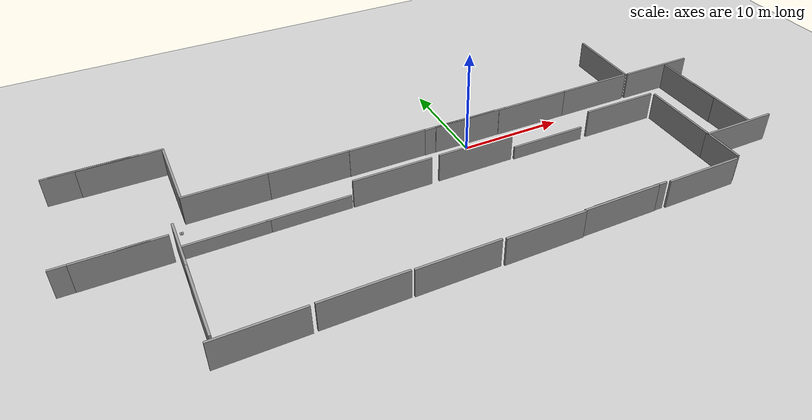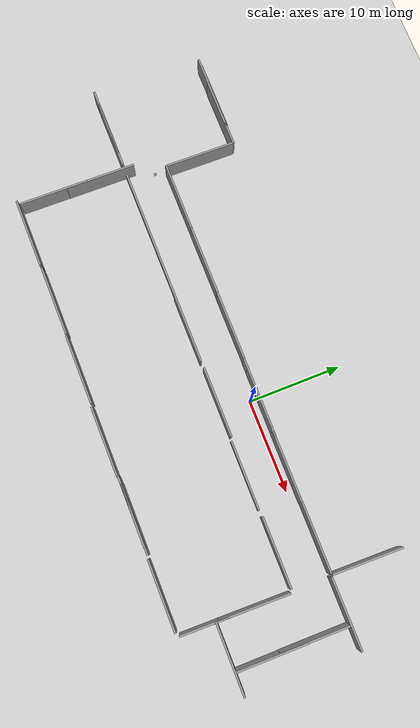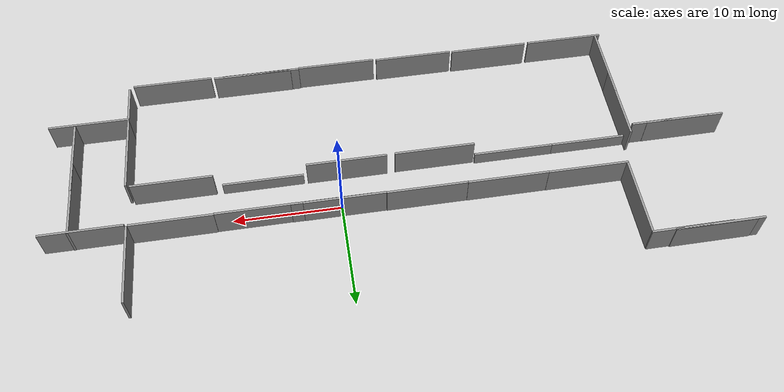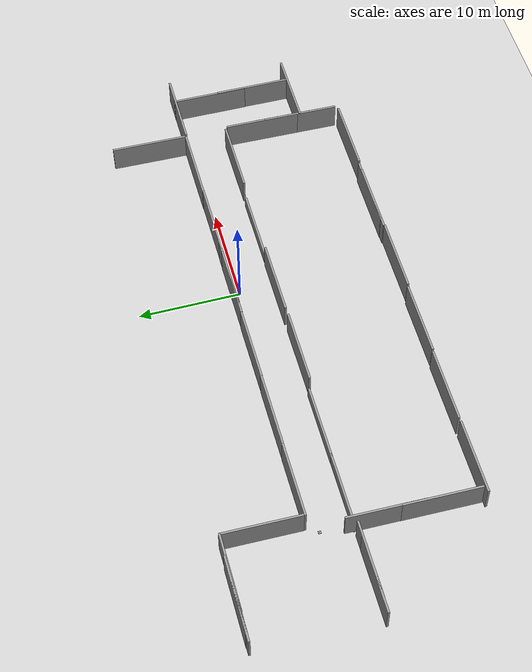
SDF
<sdf version="1.7">
 <world name="mart_world">
  <plugin name="gazebo_ros_state" filename="libgazebo_ros_state.so">
   <ros><namespace>/gazebo</namespace></ros>
   <update_rate>5.0</update_rate>
  </plugin>
  <physics type="ode">
   <max_step_size>0.001</max_step_size>
   <real_time_factor>1</real_time_factor>
   <real_time_update_rate>1000</real_time_update_rate>
  </physics>
  <light name="sun" type="directional">
   <pose>0 0 10 0 -0 0</pose>
   <diffuse>0.8 0.8 0.8 1</diffuse>
   <specular>0.2 0.2 0.2 1</specular>
   <attenuation>
    <range>1000</range>
    <constant>0.9</constant>
    <linear>0.01</linear>
    <quadratic>0.001</quadratic>
   </attenuation>
   <direction>-0.5 0.1 -0.9</direction>
   <spot><inner_angle>0</inner_angle><outer_angle>0</outer_angle><falloff>0</falloff></spot>
  </light>
  <model name="ground_plane">
   <static>1</static>
   <link name="link">
    <collision name="collision">
     <geometry><plane><normal>0 0 1</normal><size>100 100</size></plane></geometry>
     <surface><friction><ode><mu>100</mu><mu2>50</mu2></ode></friction></surface>
    </collision>
    <visual name="visual">
     <cast_shadows>0</cast_shadows>
     <geometry><plane><normal>0 0 1</normal><size>100 100</size></plane></geometry>
     <material>
      <script><uri>file://media/materials/scripts/gazebo.material</uri><name>Gazebo/Grey</name></script>
     </material>
    </visual>
   </link>
  </model>
  <gravity>0 0 -9.8</gravity>
  <magnetic_field>6e-06 2.3e-05 -4.2e-05</magnetic_field>
  <atmosphere type="adiabatic"/>
  <scene><ambient>0.4 0.4 0.4 1</ambient><background>0.7 0.7 0.7 1</background><shadows>1</shadows></scene>
  <audio><device>default</device></audio>
  <spherical_coordinates>
   <surface_model>EARTH_WGS84</surface_model>
   <latitude_deg>0</latitude_deg>
   <longitude_deg>0</longitude_deg>
   <elevation>0</elevation>
   <heading_deg>0</heading_deg>
  </spherical_coordinates>
  <gravity>0 0 -9.8</gravity>
  <magnetic_field>6e-06 2.3e-05 -4.2e-05</magnetic_field>
  <atmosphere type="adiabatic"/>
  <physics type="ode">
   <max_step_size>0.001</max_step_size>
   <real_time_factor>1</real_time_factor>
   <real_time_update_rate>1000</real_time_update_rate>
  </physics>
  <scene><ambient>0.4 0.4 0.4 1</ambient><background>0.7 0.7 0.7 1</background><shadows>1</shadows></scene>
  <audio><device>default</device></audio>
  <spherical_coordinates>
   <surface_model>EARTH_WGS84</surface_model>
   <latitude_deg>0</latitude_deg>
   <longitude_deg>0</longitude_deg>
   <elevation>0</elevation>
   <heading_deg>0</heading_deg>
  </spherical_coordinates>
  <model name="ground_plane">
   <static>1</static>
   <link name="link">
    <collision name="collision">
     <geometry><plane><normal>0 0 1</normal><size>100 100</size></plane></geometry>
     <surface><friction><ode><mu>100</mu><mu2>50</mu2></ode></friction></surface>
    </collision>
    <visual name="visual">
     <cast_shadows>0</cast_shadows>
     <geometry><plane><normal>0 0 1</normal><size>100 100</size></plane></geometry>
     <material>
      <script><uri>file://media/materials/scripts/gazebo.material</uri><name>Gazebo/Grey</name></script>
     </material>
    </visual>
   </link>
  </model>
  <model name="grey_wall_clone_clone">
   <static>1</static>
   <link name="link">
    <pose>0 0 1.4 0 -0 0</pose>
    <collision name="collision"><geometry><box><size>7.5 0.2 2.8</size></box></geometry></collision>
    <visual name="visual">
     <cast_shadows>0</cast_shadows>
     <geometry><box><size>7.5 0.2 2.8</size></box></geometry>
     <material>
      <script>
       <uri>model://grey_wall/materials/scripts</uri>
       <uri>model://grey_wall/materials/textures</uri>
       <name>vrc/grey_wall</name>
      </script>
     </material>
    </visual>
   </link>
   <pose>-15.201 0.87034 0 0 -0 0</pose>
  </model>
  <model name="grey_wall_clone_clone_0">
   <static>1</static>
   <link name="link">
    <pose>0 0 1.4 0 -0 0</pose>
    <collision name="collision"><geometry><box><size>7.5 0.2 2.8</size></box></geometry></collision>
    <visual name="visual">
     <cast_shadows>0</cast_shadows>
     <geometry><box><size>7.5 0.2 2.8</size></box></geometry>
     <material>
      <script>
       <uri>model://grey_wall/materials/scripts</uri>
       <uri>model://grey_wall/materials/textures</uri>
       <name>vrc/grey_wall</name>
      </script>
     </material>
    </visual>
   </link>
   <pose>-0.904995 -3.31283 0 0 -0 0</pose>
  </model>
  <model name="grey_wall_clone_clone_0_clone_0">
   <static>1</static>
   <link name="link">
    <pose>0 0 1.4 0 -0 0</pose>
    <collision name="collision"><geometry><box><size>7.5 0.2 2.8</size></box></geometry></collision>
    <visual name="visual">
     <cast_shadows>0</cast_shadows>
     <geometry><box><size>7.5 0.2 2.8</size></box></geometry>
     <material>
      <script>
       <uri>model://grey_wall/materials/scripts</uri>
       <uri>model://grey_wall/materials/textures</uri>
       <name>vrc/grey_wall</name>
      </script>
     </material>
    </visual>
   </link>
   <pose>6.15501 -15.2589 0 0 -0 0</pose>
  </model>
  <model name="grey_wall_clone_clone_0_clone_0_clone">
   <static>1</static>
   <link name="link">
    <pose>0 0 1.4 0 -0 0</pose>
    <collision name="collision"><geometry><box><size>7.5 0.2 2.8</size></box></geometry></collision>
    <visual name="visual">
     <cast_shadows>0</cast_shadows>
     <geometry><box><size>7.5 0.2 2.8</size></box></geometry>
     <material>
      <script>
       <uri>model://grey_wall/materials/scripts</uri>
       <uri>model://grey_wall/materials/textures</uri>
       <name>vrc/grey_wall</name>
      </script>
     </material>
    </visual>
   </link>
   <pose>14.7793 -15.3421 0 0 -0 0</pose>
  </model>
  <model name="grey_wall_clone_clone_0_clone_1">
   <static>1</static>
   <link name="link">
    <pose>0 0 1.4 0 -0 0</pose>
    <collision name="collision"><geometry><box><size>7.5 0.2 2.8</size></box></geometry></collision>
    <visual name="visual">
     <cast_shadows>0</cast_shadows>
     <geometry><box><size>7.5 0.2 2.8</size></box></geometry>
     <material>
      <script>
       <uri>model://grey_wall/materials/scripts</uri>
       <uri>model://grey_wall/materials/textures</uri>
       <name>vrc/grey_wall</name>
      </script>
     </material>
    </visual>
   </link>
   <pose>-9.10397 -15.2317 0 0 -0 0</pose>
  </model>
  <model name="grey_wall_clone_clone_0_clone_2">
   <static>1</static>
   <link name="link">
    <pose>0 0 1.4 0 -0 0</pose>
    <collision name="collision"><geometry><box><size>7.5 0.2 2.8</size></box></geometry></collision>
    <visual name="visual">
     <cast_shadows>0</cast_shadows>
     <geometry><box><size>7.5 0.2 2.8</size></box></geometry>
     <material>
      <script>
       <uri>model://grey_wall/materials/scripts</uri>
       <uri>model://grey_wall/materials/textures</uri>
       <name>vrc/grey_wall</name>
      </script>
     </material>
    </visual>
   </link>
   <pose>-16.823 -15.1589 0 0 -0 0</pose>
  </model>
  <model name="grey_wall_clone_clone_0_clone_3">
   <static>1</static>
   <link name="link">
    <pose>0 0 1.4 0 -0 0</pose>
    <collision name="collision"><geometry><box><size>7.5 0.2 2.8</size></box></geometry></collision>
    <visual name="visual">
     <cast_shadows>0</cast_shadows>
     <geometry><box><size>7.5 0.2 2.8</size></box></geometry>
     <material>
      <script>
       <uri>model://grey_wall/materials/scripts</uri>
       <uri>model://grey_wall/materials/textures</uri>
       <name>vrc/grey_wall</name>
      </script>
     </material>
    </visual>
   </link>
   <pose>-24.6787 -15.1926 0 0 -0 0</pose>
  </model>
  <model name="grey_wall_clone_clone_clone_clone_clone">
   <static>1</static>
   <link name="link">
    <pose>0 0 1.4 0 -0 0</pose>
    <collision name="collision"><geometry><box><size>7.5 0.2 2.8</size></box></geometry></collision>
    <visual name="visual">
     <cast_shadows>0</cast_shadows>
     <geometry><box><size>7.5 0.2 2.8</size></box></geometry>
     <material>
      <script>
       <uri>model://grey_wall/materials/scripts</uri>
       <uri>model://grey_wall/materials/textures</uri>
       <name>vrc/grey_wall</name>
      </script>
     </material>
    </visual>
   </link>
   <pose>-27.8328 -11.2094 0.184381 -0.000989 -0 1.55353</pose>
  </model>
  <model name="grey_wall_clone_clone_clone_clone_clone_clone">
   <static>1</static>
   <link name="link">
    <pose>0 0 1.4 0 -0 0</pose>
    <collision name="collision"><geometry><box><size>7.5 0.2 2.8</size></box></geometry></collision>
    <visual name="visual">
     <cast_shadows>0</cast_shadows>
     <geometry><box><size>7.5 0.2 2.8</size></box></geometry>
     <material>
      <script>
       <uri>model://grey_wall/materials/scripts</uri>
       <uri>model://grey_wall/materials/textures</uri>
       <name>vrc/grey_wall</name>
      </script>
     </material>
    </visual>
   </link>
   <pose>-27.7266 -6.05167 0.184331 -0.000989 -0 1.55353</pose>
  </model>
  <model name="grey_wall_clone_clone_0_clone_3_clone">
   <static>1</static>
   <link name="link">
    <pose>0 0 1.4 0 -0 0</pose>
    <collision name="collision"><geometry><box><size>7.5 0.2 2.8</size></box></geometry></collision>
    <visual name="visual">
     <cast_shadows>0</cast_shadows>
     <geometry><box><size>7.5 0.2 2.8</size></box></geometry>
     <material>
      <script>
       <uri>model://grey_wall/materials/scripts</uri>
       <uri>model://grey_wall/materials/textures</uri>
       <name>vrc/grey_wall</name>
      </script>
     </material>
    </visual>
   </link>
   <pose>-31.9086 -3.33357 0 0 -0 0</pose>
  </model>
  <model name="grey_wall_clone_clone_0_clone_3_clone_clone">
   <static>1</static>
   <link name="link">
    <pose>0 0 1.4 0 -0 0</pose>
    <collision name="collision"><geometry><box><size>7.5 0.2 2.8</size></box></geometry></collision>
    <visual name="visual">
     <cast_shadows>0</cast_shadows>
     <geometry><box><size>7.5 0.2 2.8</size></box></geometry>
     <material>
      <script>
       <uri>model://grey_wall/materials/scripts</uri>
       <uri>model://grey_wall/materials/textures</uri>
       <name>vrc/grey_wall</name>
      </script>
     </material>
    </visual>
   </link>
   <pose>-33.3262 -3.31729 0 0 -0 0</pose>
  </model>
  <model name="grey_wall_clone_clone_0_clone_3_clone_clone_clone">
   <static>1</static>
   <link name="link">
    <pose>0 0 1.4 0 -0 0</pose>
    <collision name="collision"><geometry><box><size>7.5 0.2 2.8</size></box></geometry></collision>
    <visual name="visual">
     <cast_shadows>0</cast_shadows>
     <geometry><box><size>7.5 0.2 2.8</size></box></geometry>
     <material>
      <script>
       <uri>model://grey_wall/materials/scripts</uri>
       <uri>model://grey_wall/materials/textures</uri>
       <name>vrc/grey_wall</name>
      </script>
     </material>
    </visual>
   </link>
   <pose>-32.7585 8.54767 0 0 -0 0</pose>
  </model>
  <model name="grey_wall_clone_clone_0_clone_3_clone_clone_clone_clone">
   <static>1</static>
   <link name="link">
    <pose>0 0 1.4 0 -0 0</pose>
    <collision name="collision"><geometry><box><size>7.5 0.2 2.8</size></box></geometry></collision>
    <visual name="visual">
     <cast_shadows>0</cast_shadows>
     <geometry><box><size>7.5 0.2 2.8</size></box></geometry>
     <material>
      <script>
       <uri>model://grey_wall/materials/scripts</uri>
       <uri>model://grey_wall/materials/textures</uri>
       <name>vrc/grey_wall</name>
      </script>
     </material>
    </visual>
   </link>
   <pose>-32.045 8.57947 0 0 -0 0</pose>
  </model>
  <model name="grey_wall_clone_clone_0_clone_3_clone_0">
   <static>1</static>
   <link name="link">
    <pose>0 0 1.4 0 -0 0</pose>
    <collision name="collision"><geometry><box><size>7.5 0.2 2.8</size></box></geometry></collision>
    <visual name="visual">
     <cast_shadows>0</cast_shadows>
     <geometry><box><size>7.5 0.2 2.8</size></box></geometry>
     <material>
      <script>
       <uri>model://grey_wall/materials/scripts</uri>
       <uri>model://grey_wall/materials/textures</uri>
       <name>vrc/grey_wall</name>
      </script>
     </material>
    </visual>
   </link>
   <pose>-29.8918 8.50153 0 0 -0 0</pose>
  </model>
  <model name="grey_wall_clone_clone_0_clone_3_clone_2">
   <static>1</static>
   <link name="link">
    <pose>0 0 1.4 0 -0 0</pose>
    <collision name="collision"><geometry><box><size>7.5 0.2 2.8</size></box></geometry></collision>
    <visual name="visual">
     <cast_shadows>0</cast_shadows>
     <geometry><box><size>7.5 0.2 2.8</size></box></geometry>
     <material>
      <script>
       <uri>model://grey_wall/materials/scripts</uri>
       <uri>model://grey_wall/materials/textures</uri>
       <name>vrc/grey_wall</name>
      </script>
     </material>
    </visual>
   </link>
   <pose>-7.76552 0.846313 0 0 -0 0</pose>
  </model>
  <model name="grey_wall_clone_clone_0_clone_3_clone_3">
   <static>1</static>
   <link name="link">
    <pose>0 0 1.4 0 -0 0</pose>
    <collision name="collision"><geometry><box><size>7.5 0.2 2.8</size></box></geometry></collision>
    <visual name="visual">
     <cast_shadows>0</cast_shadows>
     <geometry><box><size>7.5 0.2 2.8</size></box></geometry>
     <material>
      <script>
       <uri>model://grey_wall/materials/scripts</uri>
       <uri>model://grey_wall/materials/textures</uri>
       <name>vrc/grey_wall</name>
      </script>
     </material>
    </visual>
   </link>
   <pose>0.850383 0.795303 0 0 -0 0</pose>
  </model>
  <model name="grey_wall_clone_clone_0_clone_3_clone_4">
   <static>1</static>
   <link name="link">
    <pose>0 0 1.4 0 -0 0</pose>
    <collision name="collision"><geometry><box><size>7.5 0.2 2.8</size></box></geometry></collision>
    <visual name="visual">
     <cast_shadows>0</cast_shadows>
     <geometry><box><size>7.5 0.2 2.8</size></box></geometry>
     <material>
      <script>
       <uri>model://grey_wall/materials/scripts</uri>
       <uri>model://grey_wall/materials/textures</uri>
       <name>vrc/grey_wall</name>
      </script>
     </material>
    </visual>
   </link>
   <pose>7.62373 0.771758 0 0 -0 0</pose>
  </model>
  <model name="grey_wall_clone_clone_0_clone_3_clone_5">
   <static>1</static>
   <link name="link">
    <pose>0 0 1.4 0 -0 0</pose>
    <collision name="collision"><geometry><box><size>7.5 0.2 2.8</size></box></geometry></collision>
    <visual name="visual">
     <cast_shadows>0</cast_shadows>
     <geometry><box><size>7.5 0.2 2.8</size></box></geometry>
     <material>
      <script>
       <uri>model://grey_wall/materials/scripts</uri>
       <uri>model://grey_wall/materials/textures</uri>
       <name>vrc/grey_wall</name>
      </script>
     </material>
    </visual>
   </link>
   <pose>15.1161 0.798495 -0.02118 0 -0 0</pose>
  </model>
  <model name="grey_wall_clone_clone_clone_clone_clone_0">
   <static>1</static>
   <link name="link">
    <pose>0 0 1.4 0 -0 0</pose>
    <collision name="collision"><geometry><box><size>7.5 0.2 2.8</size></box></geometry></collision>
    <visual name="visual">
     <cast_shadows>0</cast_shadows>
     <geometry><box><size>7.5 0.2 2.8</size></box></geometry>
     <material>
      <script>
       <uri>model://grey_wall/materials/scripts</uri>
       <uri>model://grey_wall/materials/textures</uri>
       <name>vrc/grey_wall</name>
      </script>
     </material>
    </visual>
   </link>
   <pose>24.0078 -7.51837 -0.070959 -0.000989 1.2e-05 1.566</pose>
  </model>
  <model name="my_robot">
   <link name="base_footprint">
    <inertial>
     <pose>-0.064 0 0.062754 0 -0 0</pose>
     <mass>1.486</mass>
     <inertia>
      <ixx>0.0103221</ixx>
      <ixy>0</ixy>
      <ixz>-8.67362e-19</ixz>
      <iyy>0.0117821</iyy>
      <iyz>0</iyz>
      <izz>0.01245</izz>
     </inertia>
    </inertial>
    <collision name="base_footprint_fixed_joint_lump__base_link_collision">
     <pose>-0.064 0 0.057 0 -0 0</pose>
     <geometry><box><size>0.266 0.266 0.094</size></box></geometry>
    </collision>
    <collision name="base_footprint_fixed_joint_lump__base_scan_collision_1">
     <pose>-0.064 0 0.132 0 -0 0</pose>
     <geometry><cylinder><length>0.0315</length><radius>0.055</radius></cylinder></geometry>
    </collision>
    <visual name="base_footprint_fixed_joint_lump__base_link_visual">
     <pose>-0.064 0 0.057 0 -0 0</pose>
     <geometry><box><size>0.266 0.266 0.094</size></box></geometry>
    </visual>
    <visual name="base_footprint_fixed_joint_lump__base_scan_visual_1">
     <pose>-0.064 0 0.132 0 -0 0</pose>
     <geometry><cylinder><length>0.0315</length><radius>0.055</radius></cylinder></geometry>
    </visual>
    <sensor name="my_robot_lds" type="ray">
     <always_on>1</always_on>
     <visualize>1</visualize>
     <update_rate>5</update_rate>
     <ray>
      <scan>
       <horizontal>
        <samples>360</samples>
        <resolution>1</resolution>
        <min_angle>0</min_angle>
        <max_angle>6.28319</max_angle>
       </horizontal>
       <vertical><samples>1</samples><min_angle>0</min_angle><max_angle>0</max_angle></vertical>
      </scan>
      <range><min>0.12</min><max>3.5</max><resolution>0.015</resolution></range>
     </ray>
     <plugin name="my_robot_laserscan" filename="libgazebo_ros_ray_sensor.so">
      <ros><remapping>~/out:=scan</remapping></ros>
      <output_type>sensor_msgs/LaserScan</output_type>
      <frame_name>base_scan</frame_name>
     </plugin>
     <pose>-0.064 0 0.132 0 -0 0</pose>
    </sensor>
   </link>
   <joint name="wheel_left_joint" type="revolute">
    <pose relative_to="base_footprint">0 0.144 0.033 -1.5708 0 0</pose>
    <parent>base_footprint</parent>
    <child>wheel_left_link</child>
    <axis>
     <xyz>0 0 1</xyz>
     <limit><lower>-1e+16</lower><upper>1e+16</upper></limit>
     <dynamics><spring_reference>0</spring_reference><spring_stiffness>0</spring_stiffness></dynamics>
    </axis>
   </joint>
   <link name="wheel_left_link">
    <pose relative_to="wheel_left_joint">0 0 0 0 -0 0</pose>
    <inertial>
     <mass>0.028</mass>
     <inertia>
      <ixx>1.117e-05</ixx>
      <ixy>0</ixy>
      <ixz>0</ixz>
      <iyy>1.119e-05</iyy>
      <iyz>0</iyz>
      <izz>2.071e-05</izz>
     </inertia>
    </inertial>
    <collision name="wheel_left_link_collision">
     <geometry><cylinder><length>0.018</length><radius>0.033</radius></cylinder></geometry>
    </collision>
    <visual name="wheel_left_link_visual">
     <geometry><cylinder><length>0.018</length><radius>0.033</radius></cylinder></geometry>
    </visual>
   </link>
   <joint name="wheel_right_joint" type="revolute">
    <pose relative_to="base_footprint">0 -0.144 0.033 -1.5708 0 0</pose>
    <parent>base_footprint</parent>
    <child>wheel_right_link</child>
    <axis>
     <xyz>0 0 1</xyz>
     <limit><lower>-1e+16</lower><upper>1e+16</upper></limit>
     <dynamics><spring_reference>0</spring_reference><spring_stiffness>0</spring_stiffness></dynamics>
    </axis>
   </joint>
   <link name="wheel_right_link">
    <pose relative_to="wheel_right_joint">0 0 0 0 -0 0</pose>
    <inertial>
     <mass>0.028</mass>
     <inertia>
      <ixx>1.117e-05</ixx>
      <ixy>0</ixy>
      <ixz>0</ixz>
      <iyy>1.119e-05</iyy>
      <iyz>0</iyz>
      <izz>2.071e-05</izz>
     </inertia>
    </inertial>
    <collision name="wheel_right_link_collision">
     <geometry><cylinder><length>0.018</length><radius>0.033</radius></cylinder></geometry>
    </collision>
    <visual name="wheel_right_link_visual">
     <geometry><cylinder><length>0.018</length><radius>0.033</radius></cylinder></geometry>
    </visual>
   </link>
   <static>0</static>
   <plugin name="my_robot_diff_drive" filename="libgazebo_ros_diff_drive.so">
    <update_rate>30</update_rate>
    <left_joint>wheel_left_joint</left_joint>
    <right_joint>wheel_right_joint</right_joint>
    <wheel_separation>0.287</wheel_separation>
    <wheel_diameter>0.066</wheel_diameter>
    <max_wheel_torque>20</max_wheel_torque>
    <max_wheel_acceleration>1.0</max_wheel_acceleration>
    <command_topic>cmd_vel</command_topic>
    <publish_odom>1</publish_odom>
    <publish_odom_tf>1</publish_odom_tf>
    <publish_wheel_tf>0</publish_wheel_tf>
    <odometry_topic>odom</odometry_topic>
    <odometry_frame>odom</odometry_frame>
    <robot_base_frame>base_footprint</robot_base_frame>
   </plugin>
   <pose>-26.9882 -0.215784 4.3e-05 0 -0.050935 1.58762</pose>
  </model>
  <model name="grey_wall_clone_clone_clone_clone_clone_4">
   <static>1</static>
   <link name="link">
    <pose>0 0 1.4 0 -0 0</pose>
    <collision name="collision"><geometry><box><size>7.5 0.2 2.8</size></box></geometry></collision>
    <visual name="visual">
     <cast_shadows>0</cast_shadows>
     <geometry><box><size>7.5 0.2 2.8</size></box></geometry>
     <material>
      <script>
       <uri>model://grey_wall/materials/scripts</uri>
       <uri>model://grey_wall/materials/textures</uri>
       <name>vrc/grey_wall</name>
      </script>
     </material>
    </visual>
   </link>
   <pose>-26.2761 4.72153 -0.010449 -0.000989 -0 1.55353</pose>
  </model>
  <model name="grey_wall_clone_clone_0_clone_1_clone">
   <static>1</static>
   <link name="link">
    <pose>0 0 1.4 0 -0 0</pose>
    <collision name="collision"><geometry><box><size>7.5 0.2 2.8</size></box></geometry></collision>
    <visual name="visual">
     <cast_shadows>0</cast_shadows>
     <geometry><box><size>7.5 0.2 2.8</size></box></geometry>
     <material>
      <script>
       <uri>model://grey_wall/materials/scripts</uri>
       <uri>model://grey_wall/materials/textures</uri>
       <name>vrc/grey_wall</name>
      </script>
     </material>
    </visual>
   </link>
   <pose>-1.30991 -15.3382 0 0 -0 0</pose>
  </model>
  <model name="grey_wall_clone_clone_0_clone_0_clone_0">
   <static>1</static>
   <link name="link">
    <pose>0 0 1.4 0 -0 0</pose>
    <collision name="collision"><geometry><box><size>7.5 0.2 2.8</size></box></geometry></collision>
    <visual name="visual">
     <cast_shadows>0</cast_shadows>
     <geometry><box><size>7.5 0.2 2.8</size></box></geometry>
     <material>
      <script>
       <uri>model://grey_wall/materials/scripts</uri>
       <uri>model://grey_wall/materials/textures</uri>
       <name>vrc/grey_wall</name>
      </script>
     </material>
    </visual>
   </link>
   <pose>6.9667 -15.2283 0 0 -0 0</pose>
  </model>
  <model name="grey_wall_clone_clone_clone">
   <static>1</static>
   <link name="link">
    <pose>0 0 1.4 0 -0 0</pose>
    <collision name="collision"><geometry><box><size>7.5 0.2 2.8</size></box></geometry></collision>
    <visual name="visual">
     <cast_shadows>0</cast_shadows>
     <geometry><box><size>7.5 0.2 2.8</size></box></geometry>
     <material>
      <script>
       <uri>model://grey_wall/materials/scripts</uri>
       <uri>model://grey_wall/materials/textures</uri>
       <name>vrc/grey_wall</name>
      </script>
     </material>
    </visual>
   </link>
   <pose>-22.6767 0.885578 0 0 -0 0</pose>
  </model>
  <model name="grey_wall_clone_clone_clone_clone_0">
   <static>1</static>
   <link name="link">
    <pose>0 0 1.4 0 -0 0</pose>
    <collision name="collision"><geometry><box><size>7.5 0.2 2.8</size></box></geometry></collision>
    <visual name="visual">
     <cast_shadows>0</cast_shadows>
     <geometry><box><size>7.5 0.2 2.8</size></box></geometry>
     <material>
      <script>
       <uri>model://grey_wall/materials/scripts</uri>
       <uri>model://grey_wall/materials/textures</uri>
       <name>vrc/grey_wall</name>
      </script>
     </material>
    </visual>
   </link>
   <pose>-9.14753 -3.35216 0 0 -0 0</pose>
  </model>
  <model name="grey_wall_clone_clone_clone_clone_clone_3_clone">
   <static>1</static>
   <link name="link">
    <pose>0 0 1.4 0 -0 0</pose>
    <collision name="collision"><geometry><box><size>7.5 0.2 2.8</size></box></geometry></collision>
    <visual name="visual">
     <cast_shadows>0</cast_shadows>
     <geometry><box><size>7.5 0.2 2.8</size></box></geometry>
     <material>
      <script>
       <uri>model://grey_wall/materials/scripts</uri>
       <uri>model://grey_wall/materials/textures</uri>
       <name>vrc/grey_wall</name>
      </script>
     </material>
    </visual>
   </link>
   <pose>18.9941 -11.3531 -0.049659 -0.000989 -0 1.55353</pose>
  </model>
  <model name="grey_wall_clone_clone_clone_clone_clone_3_clone_clone">
   <static>1</static>
   <link name="link">
    <pose>0 0 1.4 0 -0 0</pose>
    <collision name="collision"><geometry><box><size>7.5 0.2 2.8</size></box></geometry></collision>
    <visual name="visual">
     <cast_shadows>0</cast_shadows>
     <geometry><box><size>7.5 0.2 2.8</size></box></geometry>
     <material>
      <script>
       <uri>model://grey_wall/materials/scripts</uri>
       <uri>model://grey_wall/materials/textures</uri>
       <name>vrc/grey_wall</name>
      </script>
     </material>
    </visual>
   </link>
   <pose>19.0408 4.60686 -0.049659 -0.000989 -0 1.55353</pose>
  </model>
  <model name="grey_wall_clone_clone_0_clone">
   <static>1</static>
   <link name="link">
    <pose>0 0 1.4 0 -0 0</pose>
    <collision name="collision"><geometry><box><size>7.5 0.2 2.8</size></box></geometry></collision>
    <visual name="visual">
     <cast_shadows>0</cast_shadows>
     <geometry><box><size>7.5 0.2 2.8</size></box></geometry>
     <material>
      <script>
       <uri>model://grey_wall/materials/scripts</uri>
       <uri>model://grey_wall/materials/textures</uri>
       <name>vrc/grey_wall</name>
      </script>
     </material>
    </visual>
   </link>
   <pose>6.91365 -3.38144 -1.55539 0 -0 0</pose>
  </model>
  <model name="grey_wall_clone_clone_0_clone_clone_clone">
   <static>1</static>
   <link name="link">
    <pose>0 0 1.4 0 -0 0</pose>
    <collision name="collision"><geometry><box><size>7.5 0.2 2.8</size></box></geometry></collision>
    <visual name="visual">
     <cast_shadows>0</cast_shadows>
     <geometry><box><size>7.5 0.2 2.8</size></box></geometry>
     <material>
      <script>
       <uri>model://grey_wall/materials/scripts</uri>
       <uri>model://grey_wall/materials/textures</uri>
       <name>vrc/grey_wall</name>
      </script>
     </material>
    </visual>
   </link>
   <pose>15.0397 -3.37913 0 0 -0 0</pose>
  </model>
  <model name="grey_wall_clone_clone_clone_clone_clone_3_clone_clone_0">
   <static>1</static>
   <link name="link">
    <pose>0 0 1.4 0 -0 0</pose>
    <collision name="collision"><geometry><box><size>7.5 0.2 2.8</size></box></geometry></collision>
    <visual name="visual">
     <cast_shadows>0</cast_shadows>
     <geometry><box><size>7.5 0.2 2.8</size></box></geometry>
     <material>
      <script>
       <uri>model://grey_wall/materials/scripts</uri>
       <uri>model://grey_wall/materials/textures</uri>
       <name>vrc/grey_wall</name>
      </script>
     </material>
    </visual>
   </link>
   <pose>19.0135 -10.4371 -0.049659 -0.000989 -0 1.55353</pose>
  </model>
  <model name="grey_wall_clone_clone_0_clone_clone_0">
   <static>1</static>
   <link name="link">
    <pose>0 0 1.4 0 -0 0</pose>
    <collision name="collision"><geometry><box><size>7.5 0.2 2.8</size></box></geometry></collision>
    <visual name="visual">
     <cast_shadows>0</cast_shadows>
     <geometry><box><size>7.5 0.2 2.8</size></box></geometry>
     <material>
      <script>
       <uri>model://grey_wall/materials/scripts</uri>
       <uri>model://grey_wall/materials/textures</uri>
       <name>vrc/grey_wall</name>
      </script>
     </material>
    </visual>
   </link>
   <pose>-16.7635 -3.25226 -1.55539 0 -0 0</pose>
  </model>
  <model name="grey_wall_clone_clone_0_clone_clone_0_clone">
   <static>1</static>
   <link name="link">
    <pose>0 0 1.4 0 -0 0</pose>
    <collision name="collision"><geometry><box><size>7.5 0.2 2.8</size></box></geometry></collision>
    <visual name="visual">
     <cast_shadows>0</cast_shadows>
     <geometry><box><size>7.5 0.2 2.8</size></box></geometry>
     <material>
      <script>
       <uri>model://grey_wall/materials/scripts</uri>
       <uri>model://grey_wall/materials/textures</uri>
       <name>vrc/grey_wall</name>
      </script>
     </material>
    </visual>
   </link>
   <pose>-23.9501 -3.25436 -1.55539 0 -0 0</pose>
  </model>
  <model name="grey_wall_clone_clone_0_clone_0_clone_clone_clone_clone_clone">
   <static>1</static>
   <link name="link">
    <pose>0 0 1.4 0 -0 0</pose>
    <collision name="collision"><geometry><box><size>7.5 0.2 2.8</size></box></geometry></collision>
    <visual name="visual">
     <cast_shadows>0</cast_shadows>
     <geometry><box><size>7.5 0.2 2.8</size></box></geometry>
     <material>
      <script>
       <uri>model://grey_wall/materials/scripts</uri>
       <uri>model://grey_wall/materials/textures</uri>
       <name>vrc/grey_wall</name>
      </script>
     </material>
    </visual>
   </link>
   <pose>22.8806 0.714704 0 0 -0 0</pose>
  </model>
  <model name="grey_wall_clone_clone_0_clone_3_clone_2_clone">
   <static>1</static>
   <link name="link">
    <pose>0 0 1.4 0 -0 0</pose>
    <collision name="collision"><geometry><box><size>7.5 0.2 2.8</size></box></geometry></collision>
    <visual name="visual">
     <cast_shadows>0</cast_shadows>
     <geometry><box><size>7.5 0.2 2.8</size></box></geometry>
     <material>
      <script>
       <uri>model://grey_wall/materials/scripts</uri>
       <uri>model://grey_wall/materials/textures</uri>
       <name>vrc/grey_wall</name>
      </script>
     </material>
    </visual>
   </link>
   <pose>-0.247741 0.813622 0 0 -0 0</pose>
  </model>
  <model name="grey_wall_clone_clone_clone_clone_clone_0_clone">
   <static>1</static>
   <link name="link">
    <pose>0 0 1.4 0 -0 0</pose>
    <collision name="collision"><geometry><box><size>7.5 0.2 2.8</size></box></geometry></collision>
    <visual name="visual">
     <cast_shadows>0</cast_shadows>
     <geometry><box><size>7.5 0.2 2.8</size></box></geometry>
     <material>
      <script>
       <uri>model://grey_wall/materials/scripts</uri>
       <uri>model://grey_wall/materials/textures</uri>
       <name>vrc/grey_wall</name>
      </script>
     </material>
    </visual>
   </link>
   <pose>24.0038 -2.93293 -0.089479 -0.000989 1.2e-05 1.566</pose>
  </model>
  <model name="grey_wall_clone_clone_0_clone_0_clone_clone_clone_clone_clone_clone">
   <static>1</static>
   <link name="link">
    <pose>0 0 1.4 0 -0 0</pose>
    <collision name="collision"><geometry><box><size>7.5 0.2 2.8</size></box></geometry></collision>
    <visual name="visual">
     <cast_shadows>0</cast_shadows>
     <geometry><box><size>7.5 0.2 2.8</size></box></geometry>
     <material>
      <script>
       <uri>model://grey_wall/materials/scripts</uri>
       <uri>model://grey_wall/materials/textures</uri>
       <name>vrc/grey_wall</name>
      </script>
     </material>
    </visual>
   </link>
   <pose>22.6576 -11.3163 0 0 -0 0</pose>
  </model>
  <model name="grey_wall_clone_clone_clone_clone_clone_3_clone_clone_0_clone">
   <static>1</static>
   <link name="link">
    <pose>0 0 1.4 0 -0 0</pose>
    <collision name="collision"><geometry><box><size>7.5 0.2 2.8</size></box></geometry></collision>
    <visual name="visual">
     <cast_shadows>0</cast_shadows>
     <geometry><box><size>7.5 0.2 2.8</size></box></geometry>
     <material>
      <script>
       <uri>model://grey_wall/materials/scripts</uri>
       <uri>model://grey_wall/materials/textures</uri>
       <name>vrc/grey_wall</name>
      </script>
     </material>
    </visual>
   </link>
   <pose>19.0617 -7.3032 -0.049659 -0.000989 -0 1.55353</pose>
  </model>
 </world>
</sdf>
